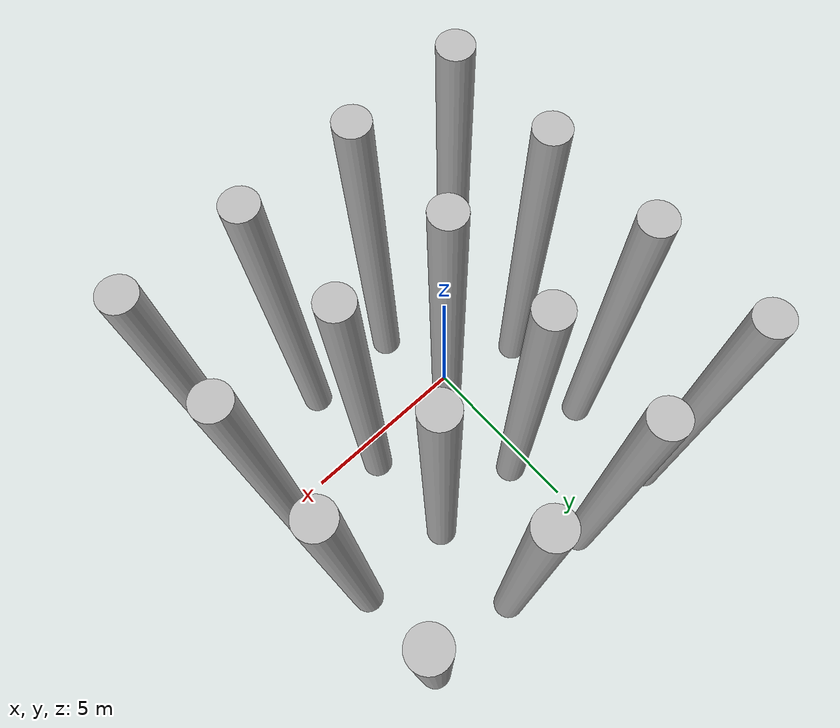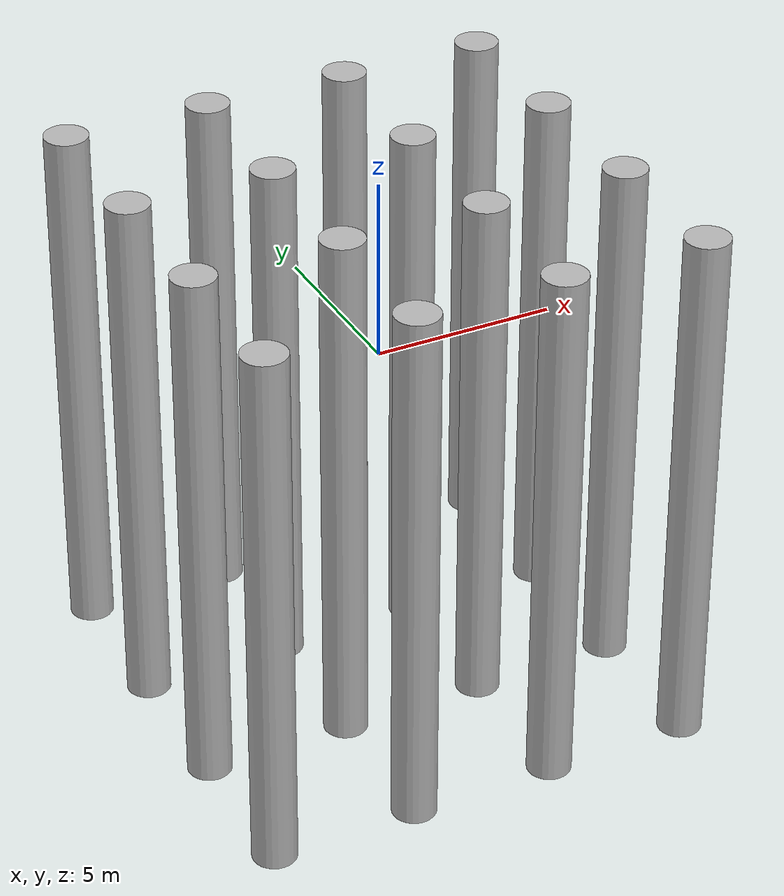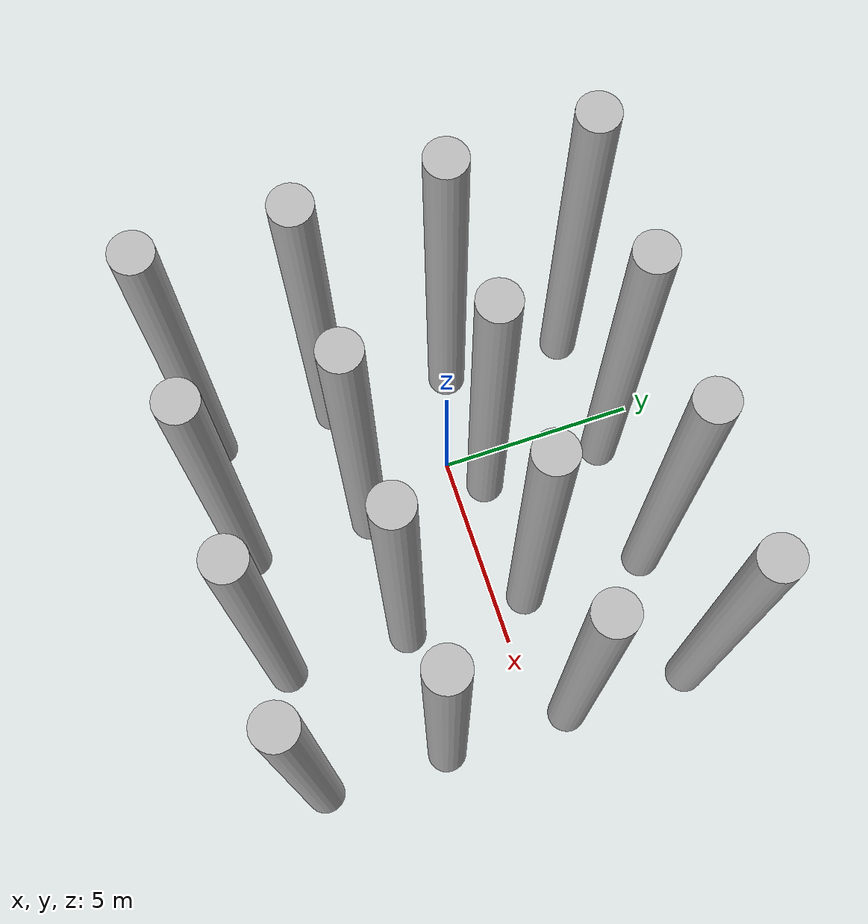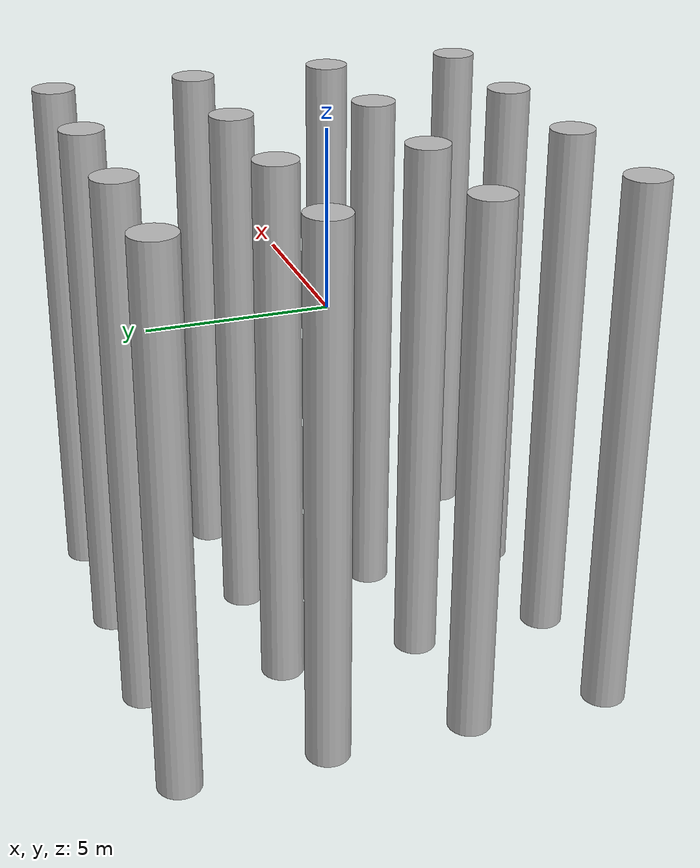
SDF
<sdf version="1.4">
 <world name="default">
  <plugin name="ros_interface_plugin" filename="librotors_gazebo_ros_interface_plugin.so"/>
  <spherical_coordinates>
   <surface_model>EARTH_WGS84</surface_model>
   <latitude_deg>47.3667</latitude_deg>
   <longitude_deg>8.5500</longitude_deg>
   <elevation>500.0</elevation>
   <heading_deg>0</heading_deg>
  </spherical_coordinates>
  <physics type="ode">
   <ode>
    <solver><type>quick</type><iters>1000</iters><sor>1.3</sor></solver>
    <constraints>
     <cfm>0</cfm>
     <erp>0.2</erp>
     <contact_max_correcting_vel>100</contact_max_correcting_vel>
     <contact_surface_layer>0.001</contact_surface_layer>
    </constraints>
   </ode>
   <max_step_size>0.01</max_step_size>
   <real_time_factor>1</real_time_factor>
   <real_time_update_rate>100</real_time_update_rate>
   <gravity>0 0 -9.8</gravity>
  </physics>
  <light type="directional" name="sun1">
   <pose>50 0 150 0 0 0</pose>
   <diffuse>1 1 1 1</diffuse>
   <specular>.1 .1 .1 1</specular>
   <direction>0.3 0.3 -1</direction>
   <cast_shadows>false</cast_shadows>
  </light>
  <light type="directional" name="sun_diffuse">
   <pose>-50 0 -150 0 0 0</pose>
   <diffuse>0.6 0.6 0.6 1</diffuse>
   <specular>0 0 0 1</specular>
   <direction>-0.3 -0.3 -1</direction>
   <cast_shadows>false</cast_shadows>
  </light>
  <scene>
   <ambient>0.01 0.01 0.01 1.0</ambient>
   <sky><clouds><speed>12</speed></clouds></sky>
   <shadows>1</shadows>
   <fog>
    <color>0.1 0.2 0.3 1.0</color>
    <type>linear</type>
    <density>0.1</density>
    <start>10</start>
    <end>40</end>
   </fog>
  </scene>
  <include>
   <uri>model://obstacle_1</uri>
   <pose>2.0 2.0 -2.5 0.0 0 0</pose>
   <name>obstacle_1</name>
   <static>true</static>
  </include>
  <include>
   <uri>model://obstacle_1</uri>
   <pose>-2.0 -2.0 -2.5 0.0 0 0</pose>
   <name>obstacle_2</name>
   <static>true</static>
  </include>
  <include>
   <uri>model://obstacle_1</uri>
   <pose>2.0 -2.0 -2.5 0.0 0 0</pose>
   <name>obstacle_3</name>
   <static>true</static>
  </include>
  <include>
   <uri>model://obstacle_1</uri>
   <pose>-2.0 2.0 -2.5 0.0 0 0</pose>
   <name>obstacle_4</name>
   <static>true</static>
  </include>
  <include>
   <uri>model://obstacle_1</uri>
   <pose>-2.0 6.0 -2.5 0.0 0 0</pose>
   <name>obstacle_5</name>
   <static>true</static>
  </include>
  <include>
   <uri>model://obstacle_1</uri>
   <pose>-6.0 2.0 -2.5 0.0 0 0</pose>
   <name>obstacle_6</name>
   <static>true</static>
  </include>
  <include>
   <uri>model://obstacle_1</uri>
   <pose>6.0 2.0 -2.5 0.0 0 0</pose>
   <name>obstacle_7</name>
   <static>true</static>
  </include>
  <include>
   <uri>model://obstacle_1</uri>
   <pose>6.0 -2.0 -2.5 0.0 0 0</pose>
   <name>obstacle_8</name>
   <static>true</static>
  </include>
  <include>
   <uri>model://obstacle_1</uri>
   <pose>-6.0 -2.0 -2.5 0.0 0 0</pose>
   <name>obstacle_9</name>
   <static>true</static>
  </include>
  <include>
   <uri>model://obstacle_1</uri>
   <pose>6.0 6.0 -2.5 0.0 0 0</pose>
   <name>obstacle_10</name>
   <static>true</static>
  </include>
  <include>
   <uri>model://obstacle_1</uri>
   <pose>-6.0 6.0 -2.5 0.0 0 0</pose>
   <name>obstacle_11</name>
   <static>true</static>
  </include>
  <include>
   <uri>model://obstacle_1</uri>
   <pose>6.0 -6.0 -2.5 0.0 0 0</pose>
   <name>obstacle_12</name>
   <static>true</static>
  </include>
  <include>
   <uri>model://obstacle_1</uri>
   <pose>-6.0 -6.0 -2.5 0.0 0 0</pose>
   <name>obstacle_13</name>
   <static>true</static>
  </include>
  <include>
   <uri>model://obstacle_1</uri>
   <pose>-2.0 -6.0 -2.5 0.0 0 0</pose>
   <name>obstacle_14</name>
   <static>true</static>
  </include>
  <include>
   <uri>model://obstacle_1</uri>
   <pose>2.0 -6.0 -2.5 0.0 0 0</pose>
   <name>obstacle_15</name>
   <static>true</static>
  </include>
  <include>
   <uri>model://obstacle_1</uri>
   <pose>2.0 6.0 -2.5 0.0 0 0</pose>
   <name>obstacle_16</name>
   <static>true</static>
  </include>
  <include>
   <uri>model://obstacle_1</uri>
   <pose>2.0 6.0 -2.5 0.0 0 0</pose>
   <name>obstacle_17</name>
   <static>true</static>
  </include>
  <plugin name="underwater_current_plugin" filename="libuuv_underwater_current_ros_plugin.so">
   <namespace>hydrodynamics</namespace>
   <constant_current>
    <topic>current_velocity</topic>
    <velocity><mean>0</mean><min>0</min><max>5</max><mu>0.0</mu><noiseAmp>0.0</noiseAmp></velocity>
    <horizontal_angle>
     <mean>0</mean>
     <min>-3.141592653589793238</min>
     <max>3.141592653589793238</max>
     <mu>0.0</mu>
     <noiseAmp>0.0</noiseAmp>
    </horizontal_angle>
    <vertical_angle>
     <mean>0</mean>
     <min>-3.141592653589793238</min>
     <max>3.141592653589793238</max>
     <mu>0.0</mu>
     <noiseAmp>0.0</noiseAmp>
    </vertical_angle>
   </constant_current>
  </plugin>
  <plugin name="sc_interface" filename="libuuv_sc_ros_interface_plugin.so"/>
 </world>
</sdf>

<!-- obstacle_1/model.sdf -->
<sdf version="1.5">
  <model name="obstacle_1">
    <static>false</static>
    <link name="link">
      <pose>0 0 0 0 0 0</pose>
      <collision name="collision">
        <geometry>
          <cylinder>
              <radius>0.6</radius>
              <length>15.0</length>
          </cylinder>
        </geometry>
      </collision>
      <visual name="visual">
        <geometry>
          <cylinder>
              <radius>0.6</radius>
              <length>15.0</length>
          </cylinder>
        </geometry>
      </visual>
    </link>
  </model>
</sdf>
